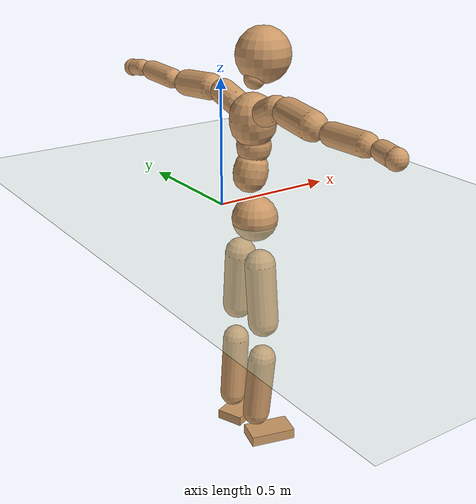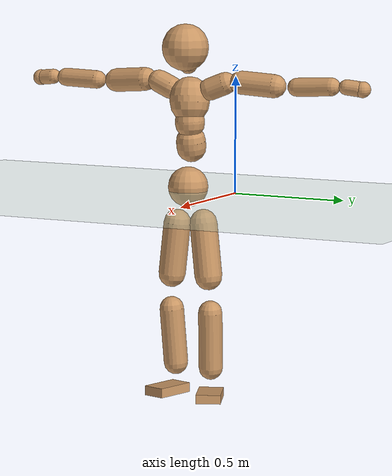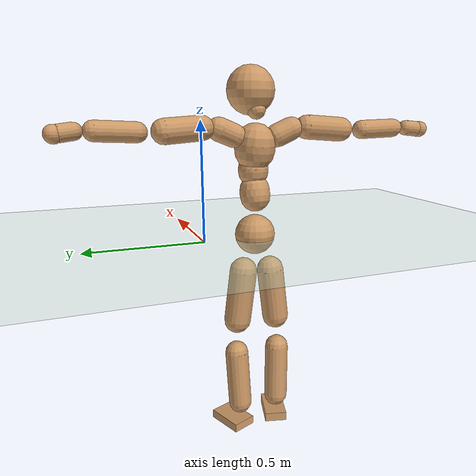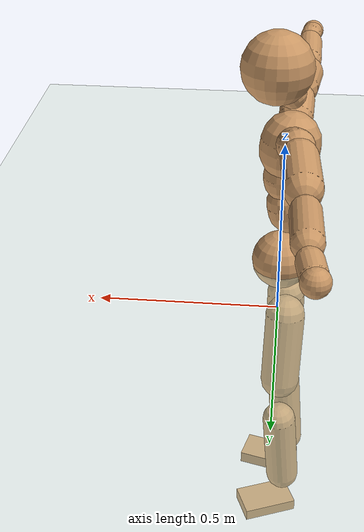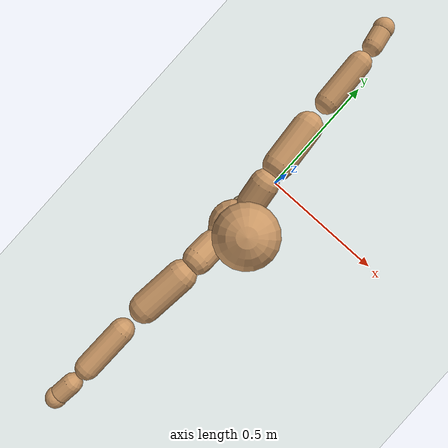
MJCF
<mujoco model="humanoid">
  <compiler coordinate="local"/>
  <default>
    <joint damping="0.0" armature="0.01" stiffness="0.0" limited="true"/>
    <geom conaffinity="1" condim="3" contype="7" margin="0.001" rgba="0.8 0.6 .4 1"/>
  </default>
  <asset>
    <texture type="skybox" builtin="gradient" rgb1=".4 .5 .6" rgb2="0 0 0" width="100" height="100"/>
    <texture builtin="flat" height="1278" mark="cross" markrgb="1 1 1" name="texgeom" random="0.01" rgb1="0.8 0.6 0.4" rgb2="0.8 0.6 0.4" type="cube" width="127"/>
    <texture builtin="checker" height="100" name="texplane" rgb1="0 0 0" rgb2="0.8 0.8 0.8" type="2d" width="100"/>
    <material name="MatPlane" reflectance="0.5" shininess="1" specular="1" texrepeat="60 60" texture="texplane"/>
    <material name="geom" texture="texgeom" texuniform="true"/>
  </asset>
  <worldbody>
    <light cutoff="100" diffuse="1 1 1" dir="-0 0 -1.3" directional="true" exponent="1" pos="0 0 1.3" specular=".1 .1 .1"/>
    <geom conaffinity="1" condim="3" name="floor" pos="0 0 0" rgba="0.8 0.9 0.8 1" size="100 100 .2" type="plane" material="MatPlane"/>
    <body name="Pelvis" pos="-0.0035 -0.2289 0.0159">
      <freejoint name="Pelvis"/>
      <geom type="sphere" contype="1" conaffinity="1" density="500" size="0.0870" pos="0.0000 0.0000 0.0000" name="Pelvis"/>
      <body name="L_Hip" pos="-0.0236 0.0537 -0.0787">
        <joint name="L_Hip_x" type="hinge" pos="0 0 0" axis="1 0 0" stiffness="800" damping="80" armature="0.02" range="-180.0000 180.0000"/>
        <joint name="L_Hip_y" type="hinge" pos="0 0 0" axis="0 1 0" stiffness="800" damping="80" armature="0.02" range="-180.0000 180.0000"/>
        <joint name="L_Hip_z" type="hinge" pos="0 0 0" axis="0 0 1" stiffness="800" damping="80" armature="0.02" range="-180.0000 180.0000"/>
        <geom type="capsule" contype="1" conaffinity="1" density="500" fromto="0.0022 0.0093 -0.0770 0.0089 0.0370 -0.3078" size="0.0594" name="L_Hip"/>
        <body name="L_Knee" pos="0.0111 0.0463 -0.3848">
          <joint name="L_Knee_x" type="hinge" pos="0 0 0" axis="1 0 0" stiffness="800" damping="80" armature="0.02" range="-180.0000 180.0000"/>
          <joint name="L_Knee_y" type="hinge" pos="0 0 0" axis="0 1 0" stiffness="800" damping="80" armature="0.02" range="-180.0000 180.0000"/>
          <joint name="L_Knee_z" type="hinge" pos="0 0 0" axis="0 0 1" stiffness="800" damping="80" armature="0.02" range="-180.0000 180.0000"/>
          <geom type="capsule" contype="1" conaffinity="1" density="500" fromto="-0.0067 -0.0025 -0.0821 -0.0267 -0.0100 -0.3283" size="0.0521" name="L_Knee"/>
          <body name="L_Ankle" pos="-0.0334 -0.0125 -0.4104">
            <joint name="L_Ankle_x" type="hinge" pos="0 0 0" axis="1 0 0" stiffness="800" damping="80" armature="0.02" range="-180.0000 180.0000"/>
            <joint name="L_Ankle_y" type="hinge" pos="0 0 0" axis="0 1 0" stiffness="800" damping="80" armature="0.02" range="-180.0000 180.0000"/>
            <joint name="L_Ankle_z" type="hinge" pos="0 0 0" axis="0 0 1" stiffness="800" damping="80" armature="0.02" range="-180.0000 180.0000"/>
            <geom type="box" contype="1" conaffinity="1" density="500" pos="0.0583 0.0236 -0.0297" size="0.0851 0.0535 0.0192" quat="0.9816 0.0000 0.0000 0.1909" name="L_Ankle"/>
            <body name="L_Toe" pos="0.1165 0.0471 -0.0594">
              <joint name="L_Toe_x" type="hinge" pos="0 0 0" axis="1 0 0" stiffness="500" damping="50" armature="0.02" range="-180.0000 180.0000"/>
              <joint name="L_Toe_y" type="hinge" pos="0 0 0" axis="0 1 0" stiffness="500" damping="50" armature="0.02" range="-180.0000 180.0000"/>
              <joint name="L_Toe_z" type="hinge" pos="0 0 0" axis="0 0 1" stiffness="500" damping="50" armature="0.02" range="-180.0000 180.0000"/>
              <geom type="box" contype="1" conaffinity="1" density="500" pos="0.0000 0.0000 0.0304" size="0.0011 0.0026 0.001" quat="0.9808 0.0000 0.0000 0.1951" name="L_Toe"/>
            </body>
          </body>
        </body>
      </body>
      <body name="R_Hip" pos="-0.0203 -0.0553 -0.0862">
        <joint name="R_Hip_x" type="hinge" pos="0 0 0" axis="1 0 0" stiffness="800" damping="80" armature="0.02" range="-180.0000 180.0000"/>
        <joint name="R_Hip_y" type="hinge" pos="0 0 0" axis="0 1 0" stiffness="800" damping="80" armature="0.02" range="-180.0000 180.0000"/>
        <joint name="R_Hip_z" type="hinge" pos="0 0 0" axis="0 0 1" stiffness="800" damping="80" armature="0.02" range="-180.0000 180.0000"/>
        <geom type="capsule" contype="1" conaffinity="1" density="500" fromto="-0.0006 -0.0089 -0.0754 -0.0023 -0.0355 -0.3018" size="0.0585" name="R_Hip"/>
        <body name="R_Knee" pos="-0.0029 -0.0444 -0.3772">
          <joint name="R_Knee_x" type="hinge" pos="0 0 0" axis="1 0 0" stiffness="800" damping="80" armature="0.02" range="-180.0000 180.0000"/>
          <joint name="R_Knee_y" type="hinge" pos="0 0 0" axis="0 1 0" stiffness="800" damping="80" armature="0.02" range="-180.0000 180.0000"/>
          <joint name="R_Knee_z" type="hinge" pos="0 0 0" axis="0 0 1" stiffness="800" damping="80" armature="0.02" range="-180.0000 180.0000"/>
          <geom type="capsule" contype="1" conaffinity="1" density="500" fromto="-0.0064 0.0034 -0.0804 -0.0254 0.0137 -0.3216" size="0.0527" name="R_Knee"/>
          <body name="R_Ankle" pos="-0.0318 0.0172 -0.4021">
            <joint name="R_Ankle_x" type="hinge" pos="0 0 0" axis="1 0 0" stiffness="800" damping="80" armature="0.02" range="-180.0000 180.0000"/>
            <joint name="R_Ankle_y" type="hinge" pos="0 0 0" axis="0 1 0" stiffness="800" damping="80" armature="0.02" range="-180.0000 180.0000"/>
            <joint name="R_Ankle_z" type="hinge" pos="0 0 0" axis="0 0 1" stiffness="800" damping="80" armature="0.02" range="-180.0000 180.0000"/>
            <geom type="box" contype="1" conaffinity="1" density="500" pos="0.0632 -0.0165 -0.0299" size="0.0892 0.0498 0.0205" quat="0.9918 0.0000 0.0000 -0.1276" name="R_Ankle"/>
            <body name="R_Toe" pos="0.1264 -0.0331 -0.0598">
              <joint name="R_Toe_x" type="hinge" pos="0 0 0" axis="1 0 0" stiffness="500" damping="50" armature="0.02" range="-180.0000 180.0000"/>
              <joint name="R_Toe_y" type="hinge" pos="0 0 0" axis="0 1 0" stiffness="500" damping="50" armature="0.02" range="-180.0000 180.0000"/>
              <joint name="R_Toe_z" type="hinge" pos="0 0 0" axis="0 0 1" stiffness="500" damping="50" armature="0.02" range="-180.0000 180.0000"/>
              <geom type="box" contype="1" conaffinity="1" density="500" pos="0.0000 0.0000 0.0311" size="0.001 0.0024 0.0011" quat="0.9930 0.0000 0.0000 -0.1185" name="R_Toe"/>
            </body>
          </body>
        </body>
      </body>
      <body name="Torso" pos="-0.03 0.0042 0.115">
        <joint name="Torso_x" type="hinge" pos="0 0 0" axis="1 0 0" stiffness="1000" damping="100" armature="0.02" range="-180.0000 180.0000"/>
        <joint name="Torso_y" type="hinge" pos="0 0 0" axis="0 1 0" stiffness="1000" damping="100" armature="0.02" range="-180.0000 180.0000"/>
        <joint name="Torso_z" type="hinge" pos="0 0 0" axis="0 0 1" stiffness="1000" damping="100" armature="0.02" range="-180.0000 180.0000"/>
        <geom type="capsule" contype="1" conaffinity="1" density="500" fromto="0.0168 0.0027 0.0821 0.0112 0.0018 0.0547" size="0.064077" name="Torso"/>
        <body name="Spine" pos="0.028 0.0044 0.1368">
          <joint name="Spine_x" type="hinge" pos="0 0 0" axis="1 0 0" stiffness="1000" damping="100" armature="0.02" range="-180.0000 180.0000"/>
          <joint name="Spine_y" type="hinge" pos="0 0 0" axis="0 1 0" stiffness="1000" damping="100" armature="0.02" range="-180.0000 180.0000"/>
          <joint name="Spine_z" type="hinge" pos="0 0 0" axis="0 0 1" stiffness="1000" damping="100" armature="0.02" range="-180.0000 180.0000"/>
          <geom type="capsule" contype="1" conaffinity="1" density="500" fromto="0.0009 -0.0008 0.0332 0.0006 -0.0006 0.0221" size="0.064077" name="Spine"/>
          <body name="Chest" pos="0.0014 -0.0014 0.0553">
            <joint name="Chest_x" type="hinge" pos="0 0 0" axis="1 0 0" stiffness="1000" damping="100" armature="0.02" range="-180.0000 180.0000"/>
            <joint name="Chest_y" type="hinge" pos="0 0 0" axis="0 1 0" stiffness="1000" damping="100" armature="0.02" range="-180.0000 180.0000"/>
            <joint name="Chest_z" type="hinge" pos="0 0 0" axis="0 0 1" stiffness="1000" damping="100" armature="0.02" range="-180.0000 180.0000"/>
            <geom type="capsule" contype="1" conaffinity="1" density="500" fromto="-0.0108 -0.0047 0.0815 -0.0072 -0.0032 0.0544" size="0.085467" name="Chest"/>
            <body name="Neck" pos="-0.0184 -0.0127 0.198">
              <joint name="Neck_x" type="hinge" pos="0 0 0" axis="1 0 0" stiffness="500" damping="50" armature="0.02" range="-180.0000 180.0000"/>
              <joint name="Neck_y" type="hinge" pos="0 0 0" axis="0 1 0" stiffness="500" damping="50" armature="0.02" range="-180.0000 180.0000"/>
              <joint name="Neck_z" type="hinge" pos="0 0 0" axis="0 0 1" stiffness="500" damping="50" armature="0.02" range="-180.0000 180.0000"/>
              <geom type="capsule" contype="1" conaffinity="1" density="500" fromto="0.0106 0.0021 0.0192 0.0423 0.0083 0.0767" size="0.039246" name="Neck"/>
              <body name="Head" pos="0.0529 0.0104 0.0958">
                <joint name="Head_x" type="hinge" pos="0 0 0" axis="1 0 0" stiffness="500" damping="50" armature="0.02" range="-180.0000 180.0000"/>
                <joint name="Head_y" type="hinge" pos="0 0 0" axis="0 1 0" stiffness="500" damping="50" armature="0.02" range="-180.0000 180.0000"/>
                <joint name="Head_z" type="hinge" pos="0 0 0" axis="0 0 1" stiffness="500" damping="50" armature="0.02" range="-180.0000 180.0000"/>
                <geom type="sphere" contype="1" conaffinity="1" density="500" size="0.1008" pos="0.0000 0.0000 0.0000" name="Head"/>
              </body>
            </body>
            <body name="L_Thorax" pos="-0.0151 0.0656 0.1058">
              <joint name="L_Thorax_x" type="hinge" pos="0 0 0" axis="1 0 0" stiffness="500" damping="50" armature="0.02" range="-180.0000 180.0000"/>
              <joint name="L_Thorax_y" type="hinge" pos="0 0 0" axis="0 1 0" stiffness="500" damping="50" armature="0.02" range="-180.0000 180.0000"/>
              <joint name="L_Thorax_z" type="hinge" pos="0 0 0" axis="0 0 1" stiffness="500" damping="50" armature="0.02" range="-180.0000 180.0000"/>
              <geom type="capsule" contype="1" conaffinity="1" density="500" fromto="-0.0029 0.0227 0.0091 -0.0117 0.0910 0.0363" size="0.0484" name="L_Thorax"/>
              <body name="L_Shoulder" pos="-0.0146 0.1137 0.0453">
                <joint name="L_Shoulder_x" type="hinge" pos="0 0 0" axis="1 0 0" stiffness="500" damping="50" armature="0.02" range="-720.0000 720.0000"/>
                <joint name="L_Shoulder_y" type="hinge" pos="0 0 0" axis="0 1 0" stiffness="500" damping="50" armature="0.02" range="-720.0000 720.0000"/>
                <joint name="L_Shoulder_z" type="hinge" pos="0 0 0" axis="0 0 1" stiffness="500" damping="50" armature="0.02" range="-720.0000 720.0000"/>
                <geom type="capsule" contype="1" conaffinity="1" density="500" fromto="-0.0039 0.0500 -0.0035 -0.0155 0.2001 -0.0139" size="0.0502" name="L_Shoulder"/>
                <body name="L_Elbow" pos="-0.0193 0.2501 -0.0173">
                  <joint name="L_Elbow_x" type="hinge" pos="0 0 0" axis="1 0 0" stiffness="500" damping="50" armature="0.02" range="-720.0000 720.0000"/>
                  <joint name="L_Elbow_y" type="hinge" pos="0 0 0" axis="0 1 0" stiffness="500" damping="50" armature="0.02" range="-720.0000 720.0000"/>
                  <joint name="L_Elbow_z" type="hinge" pos="0 0 0" axis="0 0 1" stiffness="500" damping="50" armature="0.02" range="-720.0000 720.0000"/>
                  <geom type="capsule" contype="1" conaffinity="1" density="500" fromto="-0.0017 0.0515 0.0024 -0.0069 0.2062 0.0096" size="0.0392" name="L_Elbow"/>
                  <body name="L_Wrist" pos="-0.0086 0.2577 0.012">
                    <joint name="L_Wrist_x" type="hinge" pos="0 0 0" axis="1 0 0" stiffness="300" damping="30" armature="0.02" range="-180.0000 180.0000"/>
                    <joint name="L_Wrist_y" type="hinge" pos="0 0 0" axis="0 1 0" stiffness="300" damping="30" armature="0.02" range="-180.0000 180.0000"/>
                    <joint name="L_Wrist_z" type="hinge" pos="0 0 0" axis="0 0 1" stiffness="300" damping="30" armature="0.02" range="-180.0000 180.0000"/>
                    <geom type="capsule" contype="1" conaffinity="1" density="500" fromto="-0.0031 0.0169 -0.0021 -0.0123 0.0674 -0.0084" size="0.0328" name="L_Wrist"/>
                    <body name="L_Hand" pos="-0.0154 0.0843 -0.0105">
                      <joint name="L_Hand_x" type="hinge" pos="0 0 0" axis="1 0 0" stiffness="300" damping="30" armature="0.02" range="-180.0000 180.0000"/>
                      <joint name="L_Hand_y" type="hinge" pos="0 0 0" axis="0 1 0" stiffness="300" damping="30" armature="0.02" range="-180.0000 180.0000"/>
                      <joint name="L_Hand_z" type="hinge" pos="0 0 0" axis="0 0 1" stiffness="300" damping="30" armature="0.02" range="-180.0000 180.0000"/>
                      <geom type="sphere" contype="1" conaffinity="1" density="500" size="0.0345" pos="0.0000 0.0000 0.0000" name="L_Hand"/>
                    </body>
                  </body>
                </body>
              </body>
            </body>
            <body name="R_Thorax" pos="-0.0204 -0.0765 0.1039">
              <joint name="R_Thorax_x" type="hinge" pos="0 0 0" axis="1 0 0" stiffness="500" damping="50" armature="0.02" range="-180.0000 180.0000"/>
              <joint name="R_Thorax_y" type="hinge" pos="0 0 0" axis="0 1 0" stiffness="500" damping="50" armature="0.02" range="-180.0000 180.0000"/>
              <joint name="R_Thorax_z" type="hinge" pos="0 0 0" axis="0 0 1" stiffness="500" damping="50" armature="0.02" range="-180.0000 180.0000"/>
              <geom type="capsule" contype="1" conaffinity="1" density="500" fromto="-0.0011 -0.0210 0.0092 -0.0042 -0.0839 0.0368" size="0.0488" name="R_Thorax"/>
              <body name="R_Shoulder" pos="-0.0053 -0.1049 0.046">
                <joint name="R_Shoulder_x" type="hinge" pos="0 0 0" axis="1 0 0" stiffness="500" damping="50" armature="0.02" range="-720.0000 720.0000"/>
                <joint name="R_Shoulder_y" type="hinge" pos="0 0 0" axis="0 1 0" stiffness="500" damping="50" armature="0.02" range="-720.0000 720.0000"/>
                <joint name="R_Shoulder_z" type="hinge" pos="0 0 0" axis="0 0 1" stiffness="500" damping="50" armature="0.02" range="-720.0000 720.0000"/>
                <geom type="capsule" contype="1" conaffinity="1" density="500" fromto="-0.0055 -0.0504 -0.0037 -0.0222 -0.2015 -0.0147" size="0.0511" name="R_Shoulder"/>
                <body name="R_Elbow" pos="-0.0277 -0.2518 -0.0183">
                  <joint name="R_Elbow_x" type="hinge" pos="0 0 0" axis="1 0 0" stiffness="500" damping="50" armature="0.02" range="-720.0000 720.0000"/>
                  <joint name="R_Elbow_y" type="hinge" pos="0 0 0" axis="0 1 0" stiffness="500" damping="50" armature="0.02" range="-720.0000 720.0000"/>
                  <joint name="R_Elbow_z" type="hinge" pos="0 0 0" axis="0 0 1" stiffness="500" damping="50" armature="0.02" range="-720.0000 720.0000"/>
                  <geom type="capsule" contype="1" conaffinity="1" density="500" fromto="-0.0011 -0.0526 0.0017 -0.0045 -0.2104 0.0067" size="0.0398" name="R_Elbow"/>
                  <body name="R_Wrist" pos="-0.0056 -0.263 0.0084">
                    <joint name="R_Wrist_x" type="hinge" pos="0 0 0" axis="1 0 0" stiffness="300" damping="30" armature="0.02" range="-180.0000 180.0000"/>
                    <joint name="R_Wrist_y" type="hinge" pos="0 0 0" axis="0 1 0" stiffness="300" damping="30" armature="0.02" range="-180.0000 180.0000"/>
                    <joint name="R_Wrist_z" type="hinge" pos="0 0 0" axis="0 0 1" stiffness="300" damping="30" armature="0.02" range="-180.0000 180.0000"/>
                    <geom type="capsule" contype="1" conaffinity="1" density="500" fromto="-0.0020 -0.0171 -0.0017 -0.0081 -0.0684 -0.0067" size="0.0331" name="R_Wrist"/>
                    <body name="R_Hand" pos="-0.0102 -0.0855 -0.0083">
                      <joint name="R_Hand_x" type="hinge" pos="0 0 0" axis="1 0 0" stiffness="300" damping="30" armature="0.02" range="-180.0000 180.0000"/>
                      <joint name="R_Hand_y" type="hinge" pos="0 0 0" axis="0 1 0" stiffness="300" damping="30" armature="0.02" range="-180.0000 180.0000"/>
                      <joint name="R_Hand_z" type="hinge" pos="0 0 0" axis="0 0 1" stiffness="300" damping="30" armature="0.02" range="-180.0000 180.0000"/>
                      <geom type="sphere" contype="1" conaffinity="1" density="500" size="0.0347" pos="0.0000 0.0000 0.0000" name="R_Hand"/>
                    </body>
                  </body>
                </body>
              </body>
            </body>
          </body>
        </body>
      </body>
    </body>
  </worldbody>
  <actuator>
    <motor name="L_Hip_x" joint="L_Hip_x" gear="500"/>
    <motor name="L_Hip_y" joint="L_Hip_y" gear="500"/>
    <motor name="L_Hip_z" joint="L_Hip_z" gear="500"/>
    <motor name="L_Knee_x" joint="L_Knee_x" gear="500"/>
    <motor name="L_Knee_y" joint="L_Knee_y" gear="500"/>
    <motor name="L_Knee_z" joint="L_Knee_z" gear="500"/>
    <motor name="L_Ankle_x" joint="L_Ankle_x" gear="500"/>
    <motor name="L_Ankle_y" joint="L_Ankle_y" gear="500"/>
    <motor name="L_Ankle_z" joint="L_Ankle_z" gear="500"/>
    <motor name="L_Toe_x" joint="L_Toe_x" gear="500"/>
    <motor name="L_Toe_y" joint="L_Toe_y" gear="500"/>
    <motor name="L_Toe_z" joint="L_Toe_z" gear="500"/>
    <motor name="R_Hip_x" joint="R_Hip_x" gear="500"/>
    <motor name="R_Hip_y" joint="R_Hip_y" gear="500"/>
    <motor name="R_Hip_z" joint="R_Hip_z" gear="500"/>
    <motor name="R_Knee_x" joint="R_Knee_x" gear="500"/>
    <motor name="R_Knee_y" joint="R_Knee_y" gear="500"/>
    <motor name="R_Knee_z" joint="R_Knee_z" gear="500"/>
    <motor name="R_Ankle_x" joint="R_Ankle_x" gear="500"/>
    <motor name="R_Ankle_y" joint="R_Ankle_y" gear="500"/>
    <motor name="R_Ankle_z" joint="R_Ankle_z" gear="500"/>
    <motor name="R_Toe_x" joint="R_Toe_x" gear="500"/>
    <motor name="R_Toe_y" joint="R_Toe_y" gear="500"/>
    <motor name="R_Toe_z" joint="R_Toe_z" gear="500"/>
    <motor name="Torso_x" joint="Torso_x" gear="500"/>
    <motor name="Torso_y" joint="Torso_y" gear="500"/>
    <motor name="Torso_z" joint="Torso_z" gear="500"/>
    <motor name="Spine_x" joint="Spine_x" gear="500"/>
    <motor name="Spine_y" joint="Spine_y" gear="500"/>
    <motor name="Spine_z" joint="Spine_z" gear="500"/>
    <motor name="Chest_x" joint="Chest_x" gear="500"/>
    <motor name="Chest_y" joint="Chest_y" gear="500"/>
    <motor name="Chest_z" joint="Chest_z" gear="500"/>
    <motor name="Neck_x" joint="Neck_x" gear="500"/>
    <motor name="Neck_y" joint="Neck_y" gear="500"/>
    <motor name="Neck_z" joint="Neck_z" gear="500"/>
    <motor name="Head_x" joint="Head_x" gear="500"/>
    <motor name="Head_y" joint="Head_y" gear="500"/>
    <motor name="Head_z" joint="Head_z" gear="500"/>
    <motor name="L_Thorax_x" joint="L_Thorax_x" gear="500"/>
    <motor name="L_Thorax_y" joint="L_Thorax_y" gear="500"/>
    <motor name="L_Thorax_z" joint="L_Thorax_z" gear="500"/>
    <motor name="L_Shoulder_x" joint="L_Shoulder_x" gear="500"/>
    <motor name="L_Shoulder_y" joint="L_Shoulder_y" gear="500"/>
    <motor name="L_Shoulder_z" joint="L_Shoulder_z" gear="500"/>
    <motor name="L_Elbow_x" joint="L_Elbow_x" gear="500"/>
    <motor name="L_Elbow_y" joint="L_Elbow_y" gear="500"/>
    <motor name="L_Elbow_z" joint="L_Elbow_z" gear="500"/>
    <motor name="L_Wrist_x" joint="L_Wrist_x" gear="500"/>
    <motor name="L_Wrist_y" joint="L_Wrist_y" gear="500"/>
    <motor name="L_Wrist_z" joint="L_Wrist_z" gear="500"/>
    <motor name="L_Hand_x" joint="L_Hand_x" gear="500"/>
    <motor name="L_Hand_y" joint="L_Hand_y" gear="500"/>
    <motor name="L_Hand_z" joint="L_Hand_z" gear="500"/>
    <motor name="R_Thorax_x" joint="R_Thorax_x" gear="500"/>
    <motor name="R_Thorax_y" joint="R_Thorax_y" gear="500"/>
    <motor name="R_Thorax_z" joint="R_Thorax_z" gear="500"/>
    <motor name="R_Shoulder_x" joint="R_Shoulder_x" gear="500"/>
    <motor name="R_Shoulder_y" joint="R_Shoulder_y" gear="500"/>
    <motor name="R_Shoulder_z" joint="R_Shoulder_z" gear="500"/>
    <motor name="R_Elbow_x" joint="R_Elbow_x" gear="500"/>
    <motor name="R_Elbow_y" joint="R_Elbow_y" gear="500"/>
    <motor name="R_Elbow_z" joint="R_Elbow_z" gear="500"/>
    <motor name="R_Wrist_x" joint="R_Wrist_x" gear="500"/>
    <motor name="R_Wrist_y" joint="R_Wrist_y" gear="500"/>
    <motor name="R_Wrist_z" joint="R_Wrist_z" gear="500"/>
    <motor name="R_Hand_x" joint="R_Hand_x" gear="500"/>
    <motor name="R_Hand_y" joint="R_Hand_y" gear="500"/>
    <motor name="R_Hand_z" joint="R_Hand_z" gear="500"/>
  </actuator>
  <contact>
    <exclude body1="Torso" body2="Chest"/>
    <exclude body1="Head" body2="Chest"/>
    <exclude body1="R_Knee" body2="R_Toe"/>
    <exclude body1="R_Knee" body2="L_Ankle"/>
    <exclude body1="R_Knee" body2="L_Toe"/>
    <exclude body1="L_Knee" body2="L_Toe"/>
    <exclude body1="L_Knee" body2="R_Ankle"/>
    <exclude body1="L_Knee" body2="R_Toe"/>
    <exclude body1="L_Shoulder" body2="Chest"/>
    <exclude body1="R_Shoulder" body2="Chest"/>
  </contact>
  <sensor/>
  <size njmax="700" nconmax="700"/>
</mujoco>
